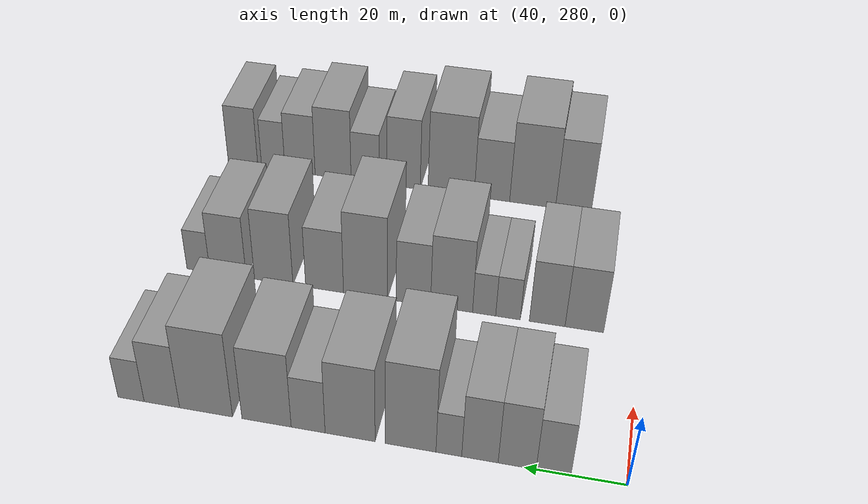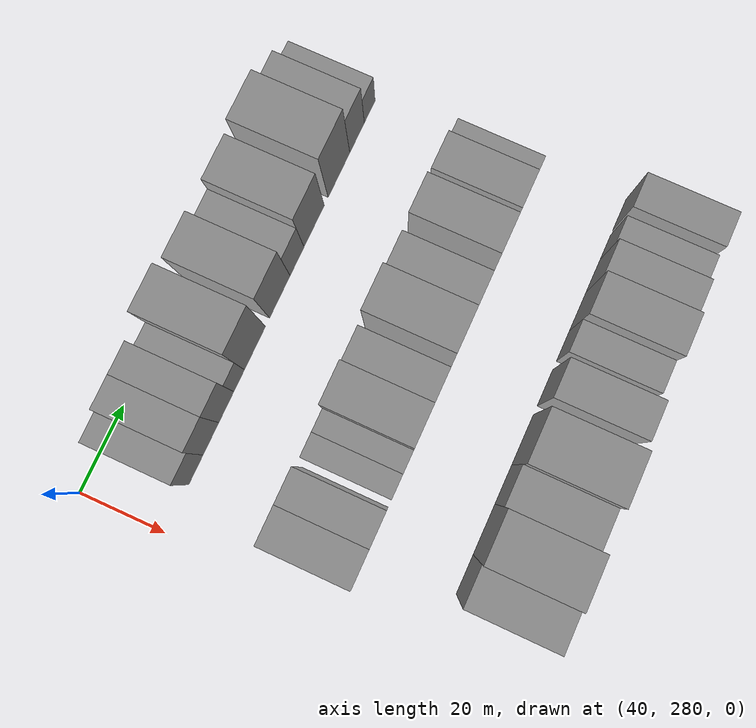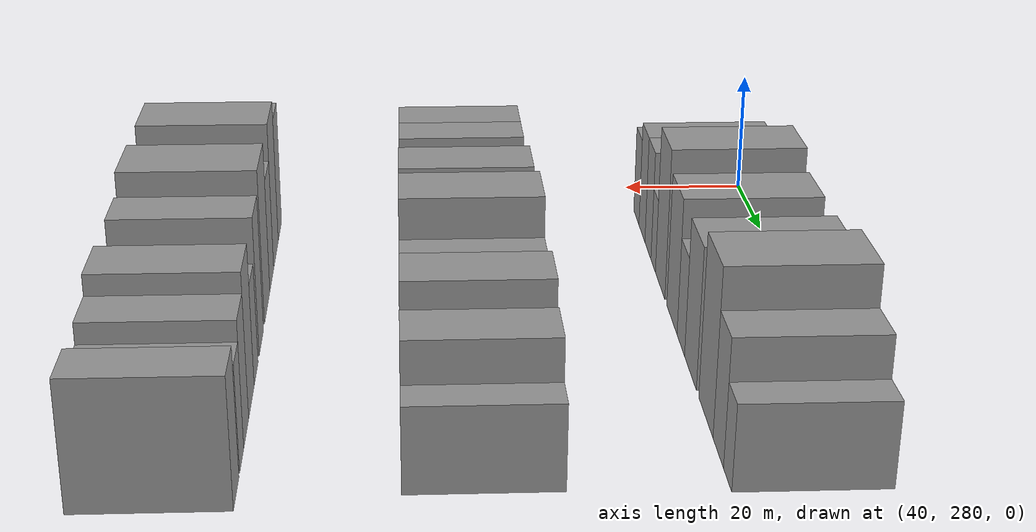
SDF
<sdf version="1.6">
 <world name="default">
  <model name="building_75">
   <static>1</static>
   <pose>50.0000 294.2836 0 0.000000 0.000000 0.000000</pose>
   <link name="link">
    <pose>0 0 7.50 0 0 0</pose>
    <collision name="collision"><geometry><box><size>20.0000 6.7849 15.0000</size></box></geometry></collision>
    <visual name="visual">
     <cast_shadows>0</cast_shadows>
     <geometry><box><size>20.0000 6.7849 15.0000</size></box></geometry>
     <material>
      <script>
       <uri>model://grey_wall/materials/scripts</uri>
       <uri>model://grey_wall/materials/textures</uri>
       <name>vrc/grey_wall</name>
      </script>
     </material>
    </visual>
   </link>
  </model>
  <model name="building_76">
   <static>1</static>
   <pose>50.0000 301.4086 0 0.000000 0.000000 0.000000</pose>
   <link name="link">
    <pose>0 0 9.00 0 0 0</pose>
    <collision name="collision"><geometry><box><size>20.0000 7.4652 18.0000</size></box></geometry></collision>
    <visual name="visual">
     <cast_shadows>0</cast_shadows>
     <geometry><box><size>20.0000 7.4652 18.0000</size></box></geometry>
     <material>
      <script>
       <uri>model://grey_wall/materials/scripts</uri>
       <uri>model://grey_wall/materials/textures</uri>
       <name>vrc/grey_wall</name>
      </script>
     </material>
    </visual>
   </link>
  </model>
  <model name="building_77">
   <static>1</static>
   <pose>50.0000 308.7556 0 0.000000 0.000000 0.000000</pose>
   <link name="link">
    <pose>0 0 9.00 0 0 0</pose>
    <collision name="collision"><geometry><box><size>20.0000 7.2288 18.0000</size></box></geometry></collision>
    <visual name="visual">
     <cast_shadows>0</cast_shadows>
     <geometry><box><size>20.0000 7.2288 18.0000</size></box></geometry>
     <material>
      <script>
       <uri>model://grey_wall/materials/scripts</uri>
       <uri>model://grey_wall/materials/textures</uri>
       <name>vrc/grey_wall</name>
      </script>
     </material>
    </visual>
   </link>
  </model>
  <model name="building_78">
   <static>1</static>
   <pose>50.0000 314.9421 0 0.000000 0.000000 0.000000</pose>
   <link name="link">
    <pose>0 0 6.00 0 0 0</pose>
    <collision name="collision"><geometry><box><size>20.0000 5.1442 12.0000</size></box></geometry></collision>
    <visual name="visual">
     <cast_shadows>0</cast_shadows>
     <geometry><box><size>20.0000 5.1442 12.0000</size></box></geometry>
     <material>
      <script>
       <uri>model://grey_wall/materials/scripts</uri>
       <uri>model://grey_wall/materials/textures</uri>
       <name>vrc/grey_wall</name>
      </script>
     </material>
    </visual>
   </link>
  </model>
  <model name="building_79">
   <static>1</static>
   <pose>50.0000 322.6762 0 0.000000 0.000000 0.000000</pose>
   <link name="link">
    <pose>0 0 12.00 0 0 0</pose>
    <collision name="collision"><geometry><box><size>20.0000 10.3239 24.0000</size></box></geometry></collision>
    <visual name="visual">
     <cast_shadows>0</cast_shadows>
     <geometry><box><size>20.0000 10.3239 24.0000</size></box></geometry>
     <material>
      <script>
       <uri>model://grey_wall/materials/scripts</uri>
       <uri>model://grey_wall/materials/textures</uri>
       <name>vrc/grey_wall</name>
      </script>
     </material>
    </visual>
   </link>
  </model>
  <model name="building_80">
   <static>1</static>
   <pose>50.0000 334.9730 0 0.000000 0.000000 0.000000</pose>
   <link name="link">
    <pose>0 0 10.50 0 0 0</pose>
    <collision name="collision"><geometry><box><size>20.0000 10.2697 21.0000</size></box></geometry></collision>
    <visual name="visual">
     <cast_shadows>0</cast_shadows>
     <geometry><box><size>20.0000 10.2697 21.0000</size></box></geometry>
     <material>
      <script>
       <uri>model://grey_wall/materials/scripts</uri>
       <uri>model://grey_wall/materials/textures</uri>
       <name>vrc/grey_wall</name>
      </script>
     </material>
    </visual>
   </link>
  </model>
  <model name="building_81">
   <static>1</static>
   <pose>50.0000 343.6365 0 0.000000 0.000000 0.000000</pose>
   <link name="link">
    <pose>0 0 7.50 0 0 0</pose>
    <collision name="collision"><geometry><box><size>20.0000 7.0573 15.0000</size></box></geometry></collision>
    <visual name="visual">
     <cast_shadows>0</cast_shadows>
     <geometry><box><size>20.0000 7.0573 15.0000</size></box></geometry>
     <material>
      <script>
       <uri>model://grey_wall/materials/scripts</uri>
       <uri>model://grey_wall/materials/textures</uri>
       <name>vrc/grey_wall</name>
      </script>
     </material>
    </visual>
   </link>
  </model>
  <model name="building_82">
   <static>1</static>
   <pose>50.0000 352.3466 0 0.000000 0.000000 0.000000</pose>
   <link name="link">
    <pose>0 0 10.50 0 0 0</pose>
    <collision name="collision"><geometry><box><size>20.0000 10.3629 21.0000</size></box></geometry></collision>
    <visual name="visual">
     <cast_shadows>0</cast_shadows>
     <geometry><box><size>20.0000 10.3629 21.0000</size></box></geometry>
     <material>
      <script>
       <uri>model://grey_wall/materials/scripts</uri>
       <uri>model://grey_wall/materials/textures</uri>
       <name>vrc/grey_wall</name>
      </script>
     </material>
    </visual>
   </link>
  </model>
  <model name="building_83">
   <static>1</static>
   <pose>50.0000 365.1858 0 0.000000 0.000000 0.000000</pose>
   <link name="link">
    <pose>0 0 12.00 0 0 0</pose>
    <collision name="collision"><geometry><box><size>20.0000 11.3154 24.0000</size></box></geometry></collision>
    <visual name="visual">
     <cast_shadows>0</cast_shadows>
     <geometry><box><size>20.0000 11.3154 24.0000</size></box></geometry>
     <material>
      <script>
       <uri>model://grey_wall/materials/scripts</uri>
       <uri>model://grey_wall/materials/textures</uri>
       <name>vrc/grey_wall</name>
      </script>
     </material>
    </visual>
   </link>
  </model>
  <model name="building_84">
   <static>1</static>
   <pose>50.0000 374.6880 0 0.000000 0.000000 0.000000</pose>
   <link name="link">
    <pose>0 0 9.00 0 0 0</pose>
    <collision name="collision"><geometry><box><size>20.0000 7.6889 18.0000</size></box></geometry></collision>
    <visual name="visual">
     <cast_shadows>0</cast_shadows>
     <geometry><box><size>20.0000 7.6889 18.0000</size></box></geometry>
     <material>
      <script>
       <uri>model://grey_wall/materials/scripts</uri>
       <uri>model://grey_wall/materials/textures</uri>
       <name>vrc/grey_wall</name>
      </script>
     </material>
    </visual>
   </link>
  </model>
  <model name="building_85">
   <static>1</static>
   <pose>50.0000 381.3923 0 0.000000 0.000000 0.000000</pose>
   <link name="link">
    <pose>0 0 6.00 0 0 0</pose>
    <collision name="collision"><geometry><box><size>20.0000 5.7198 12.0000</size></box></geometry></collision>
    <visual name="visual">
     <cast_shadows>0</cast_shadows>
     <geometry><box><size>20.0000 5.7198 12.0000</size></box></geometry>
     <material>
      <script>
       <uri>model://grey_wall/materials/scripts</uri>
       <uri>model://grey_wall/materials/textures</uri>
       <name>vrc/grey_wall</name>
      </script>
     </material>
    </visual>
   </link>
  </model>
  <model name="building_155">
   <static>1</static>
   <pose>90.0000 291.9110 0 0.000000 0.000000 0.000000</pose>
   <link name="link">
    <pose>0 0 9.00 0 0 0</pose>
    <collision name="collision"><geometry><box><size>20.0000 8.4079 18.0000</size></box></geometry></collision>
    <visual name="visual">
     <cast_shadows>0</cast_shadows>
     <geometry><box><size>20.0000 8.4079 18.0000</size></box></geometry>
     <material>
      <script>
       <uri>model://grey_wall/materials/scripts</uri>
       <uri>model://grey_wall/materials/textures</uri>
       <name>vrc/grey_wall</name>
      </script>
     </material>
    </visual>
   </link>
  </model>
  <model name="building_156">
   <static>1</static>
   <pose>90.0000 300.0490 0 0.000000 0.000000 0.000000</pose>
   <link name="link">
    <pose>0 0 9.00 0 0 0</pose>
    <collision name="collision"><geometry><box><size>20.0000 7.8681 18.0000</size></box></geometry></collision>
    <visual name="visual">
     <cast_shadows>0</cast_shadows>
     <geometry><box><size>20.0000 7.8681 18.0000</size></box></geometry>
     <material>
      <script>
       <uri>model://grey_wall/materials/scripts</uri>
       <uri>model://grey_wall/materials/textures</uri>
       <name>vrc/grey_wall</name>
      </script>
     </material>
    </visual>
   </link>
  </model>
  <model name="building_157">
   <static>1</static>
   <pose>90.0000 308.7134 0 0.000000 0.000000 0.000000</pose>
   <link name="link">
    <pose>0 0 6.00 0 0 0</pose>
    <collision name="collision"><geometry><box><size>20.0000 5.4607 12.0000</size></box></geometry></collision>
    <visual name="visual">
     <cast_shadows>0</cast_shadows>
     <geometry><box><size>20.0000 5.4607 12.0000</size></box></geometry>
     <material>
      <script>
       <uri>model://grey_wall/materials/scripts</uri>
       <uri>model://grey_wall/materials/textures</uri>
       <name>vrc/grey_wall</name>
      </script>
     </material>
    </visual>
   </link>
  </model>
  <model name="building_158">
   <static>1</static>
   <pose>90.0000 314.0347 0 0.000000 0.000000 0.000000</pose>
   <link name="link">
    <pose>0 0 6.00 0 0 0</pose>
    <collision name="collision"><geometry><box><size>20.0000 5.1819 12.0000</size></box></geometry></collision>
    <visual name="visual">
     <cast_shadows>0</cast_shadows>
     <geometry><box><size>20.0000 5.1819 12.0000</size></box></geometry>
     <material>
      <script>
       <uri>model://grey_wall/materials/scripts</uri>
       <uri>model://grey_wall/materials/textures</uri>
       <name>vrc/grey_wall</name>
      </script>
     </material>
    </visual>
   </link>
  </model>
  <model name="building_159">
   <static>1</static>
   <pose>90.0000 321.3732 0 0.000000 0.000000 0.000000</pose>
   <link name="link">
    <pose>0 0 10.50 0 0 0</pose>
    <collision name="collision"><geometry><box><size>20.0000 9.4953 21.0000</size></box></geometry></collision>
    <visual name="visual">
     <cast_shadows>0</cast_shadows>
     <geometry><box><size>20.0000 9.4953 21.0000</size></box></geometry>
     <material>
      <script>
       <uri>model://grey_wall/materials/scripts</uri>
       <uri>model://grey_wall/materials/textures</uri>
       <name>vrc/grey_wall</name>
      </script>
     </material>
    </visual>
   </link>
  </model>
  <model name="building_160">
   <static>1</static>
   <pose>90.0000 330.0523 0 0.000000 0.000000 0.000000</pose>
   <link name="link">
    <pose>0 0 9.00 0 0 0</pose>
    <collision name="collision"><geometry><box><size>20.0000 7.8629 18.0000</size></box></geometry></collision>
    <visual name="visual">
     <cast_shadows>0</cast_shadows>
     <geometry><box><size>20.0000 7.8629 18.0000</size></box></geometry>
     <material>
      <script>
       <uri>model://grey_wall/materials/scripts</uri>
       <uri>model://grey_wall/materials/textures</uri>
       <name>vrc/grey_wall</name>
      </script>
     </material>
    </visual>
   </link>
  </model>
  <model name="building_161">
   <static>1</static>
   <pose>90.0000 341.0586 0 0.000000 0.000000 0.000000</pose>
   <link name="link">
    <pose>0 0 12.00 0 0 0</pose>
    <collision name="collision"><geometry><box><size>20.0000 10.1496 24.0000</size></box></geometry></collision>
    <visual name="visual">
     <cast_shadows>0</cast_shadows>
     <geometry><box><size>20.0000 10.1496 24.0000</size></box></geometry>
     <material>
      <script>
       <uri>model://grey_wall/materials/scripts</uri>
       <uri>model://grey_wall/materials/textures</uri>
       <name>vrc/grey_wall</name>
      </script>
     </material>
    </visual>
   </link>
  </model>
  <model name="building_162">
   <static>1</static>
   <pose>90.0000 350.5519 0 0.000000 0.000000 0.000000</pose>
   <link name="link">
    <pose>0 0 9.00 0 0 0</pose>
    <collision name="collision"><geometry><box><size>20.0000 8.8370 18.0000</size></box></geometry></collision>
    <visual name="visual">
     <cast_shadows>0</cast_shadows>
     <geometry><box><size>20.0000 8.8370 18.0000</size></box></geometry>
     <material>
      <script>
       <uri>model://grey_wall/materials/scripts</uri>
       <uri>model://grey_wall/materials/textures</uri>
       <name>vrc/grey_wall</name>
      </script>
     </material>
    </visual>
   </link>
  </model>
  <model name="building_163">
   <static>1</static>
   <pose>90.0000 362.5187 0 0.000000 0.000000 0.000000</pose>
   <link name="link">
    <pose>0 0 10.50 0 0 0</pose>
    <collision name="collision"><geometry><box><size>20.0000 9.0964 21.0000</size></box></geometry></collision>
    <visual name="visual">
     <cast_shadows>0</cast_shadows>
     <geometry><box><size>20.0000 9.0964 21.0000</size></box></geometry>
     <material>
      <script>
       <uri>model://grey_wall/materials/scripts</uri>
       <uri>model://grey_wall/materials/textures</uri>
       <name>vrc/grey_wall</name>
      </script>
     </material>
    </visual>
   </link>
  </model>
  <model name="building_164">
   <static>1</static>
   <pose>90.0000 373.4309 0 0.000000 0.000000 0.000000</pose>
   <link name="link">
    <pose>0 0 9.00 0 0 0</pose>
    <collision name="collision"><geometry><box><size>20.0000 8.7281 18.0000</size></box></geometry></collision>
    <visual name="visual">
     <cast_shadows>0</cast_shadows>
     <geometry><box><size>20.0000 8.7281 18.0000</size></box></geometry>
     <material>
      <script>
       <uri>model://grey_wall/materials/scripts</uri>
       <uri>model://grey_wall/materials/textures</uri>
       <name>vrc/grey_wall</name>
      </script>
     </material>
    </visual>
   </link>
  </model>
  <model name="building_165">
   <static>1</static>
   <pose>90.0000 380.5736 0 0.000000 0.000000 0.000000</pose>
   <link name="link">
    <pose>0 0 6.00 0 0 0</pose>
    <collision name="collision"><geometry><box><size>20.0000 5.5572 12.0000</size></box></geometry></collision>
    <visual name="visual">
     <cast_shadows>0</cast_shadows>
     <geometry><box><size>20.0000 5.5572 12.0000</size></box></geometry>
     <material>
      <script>
       <uri>model://grey_wall/materials/scripts</uri>
       <uri>model://grey_wall/materials/textures</uri>
       <name>vrc/grey_wall</name>
      </script>
     </material>
    </visual>
   </link>
  </model>
  <model name="building_244">
   <static>1</static>
   <pose>130.0000 298.1577 0 0.000000 0.000000 0.000000</pose>
   <link name="link">
    <pose>0 0 10.50 0 0 0</pose>
    <collision name="collision"><geometry><box><size>20.0000 8.6908 21.0000</size></box></geometry></collision>
    <visual name="visual">
     <cast_shadows>0</cast_shadows>
     <geometry><box><size>20.0000 8.6908 21.0000</size></box></geometry>
     <material>
      <script>
       <uri>model://grey_wall/materials/scripts</uri>
       <uri>model://grey_wall/materials/textures</uri>
       <name>vrc/grey_wall</name>
      </script>
     </material>
    </visual>
   </link>
  </model>
  <model name="building_245">
   <static>1</static>
   <pose>130.0000 308.1584 0 0.000000 0.000000 0.000000</pose>
   <link name="link">
    <pose>0 0 12.00 0 0 0</pose>
    <collision name="collision"><geometry><box><size>20.0000 11.3106 24.0000</size></box></geometry></collision>
    <visual name="visual">
     <cast_shadows>0</cast_shadows>
     <geometry><box><size>20.0000 11.3106 24.0000</size></box></geometry>
     <material>
      <script>
       <uri>model://grey_wall/materials/scripts</uri>
       <uri>model://grey_wall/materials/textures</uri>
       <name>vrc/grey_wall</name>
      </script>
     </material>
    </visual>
   </link>
  </model>
  <model name="building_246">
   <static>1</static>
   <pose>130.0000 318.2241 0 0.000000 0.000000 0.000000</pose>
   <link name="link">
    <pose>0 0 9.00 0 0 0</pose>
    <collision name="collision"><geometry><box><size>20.0000 8.8208 18.0000</size></box></geometry></collision>
    <visual name="visual">
     <cast_shadows>0</cast_shadows>
     <geometry><box><size>20.0000 8.8208 18.0000</size></box></geometry>
     <material>
      <script>
       <uri>model://grey_wall/materials/scripts</uri>
       <uri>model://grey_wall/materials/textures</uri>
       <name>vrc/grey_wall</name>
      </script>
     </material>
    </visual>
   </link>
  </model>
  <model name="building_247">
   <static>1</static>
   <pose>130.0000 328.4529 0 0.000000 0.000000 0.000000</pose>
   <link name="link">
    <pose>0 0 12.00 0 0 0</pose>
    <collision name="collision"><geometry><box><size>20.0000 11.6368 24.0000</size></box></geometry></collision>
    <visual name="visual">
     <cast_shadows>0</cast_shadows>
     <geometry><box><size>20.0000 11.6368 24.0000</size></box></geometry>
     <material>
      <script>
       <uri>model://grey_wall/materials/scripts</uri>
       <uri>model://grey_wall/materials/textures</uri>
       <name>vrc/grey_wall</name>
      </script>
     </material>
    </visual>
   </link>
  </model>
  <model name="building_248">
   <static>1</static>
   <pose>130.0000 340.5234 0 0.000000 0.000000 0.000000</pose>
   <link name="link">
    <pose>0 0 10.50 0 0 0</pose>
    <collision name="collision"><geometry><box><size>20.0000 8.5042 21.0000</size></box></geometry></collision>
    <visual name="visual">
     <cast_shadows>0</cast_shadows>
     <geometry><box><size>20.0000 8.5042 21.0000</size></box></geometry>
     <material>
      <script>
       <uri>model://grey_wall/materials/scripts</uri>
       <uri>model://grey_wall/materials/textures</uri>
       <name>vrc/grey_wall</name>
      </script>
     </material>
    </visual>
   </link>
  </model>
  <model name="building_249">
   <static>1</static>
   <pose>130.0000 350.3819 0 0.000000 0.000000 0.000000</pose>
   <link name="link">
    <pose>0 0 7.50 0 0 0</pose>
    <collision name="collision"><geometry><box><size>20.0000 7.2128 15.0000</size></box></geometry></collision>
    <visual name="visual">
     <cast_shadows>0</cast_shadows>
     <geometry><box><size>20.0000 7.2128 15.0000</size></box></geometry>
     <material>
      <script>
       <uri>model://grey_wall/materials/scripts</uri>
       <uri>model://grey_wall/materials/textures</uri>
       <name>vrc/grey_wall</name>
      </script>
     </material>
    </visual>
   </link>
  </model>
  <model name="building_250">
   <static>1</static>
   <pose>130.0000 358.6565 0 0.000000 0.000000 0.000000</pose>
   <link name="link">
    <pose>0 0 10.50 0 0 0</pose>
    <collision name="collision"><geometry><box><size>20.0000 9.3363 21.0000</size></box></geometry></collision>
    <visual name="visual">
     <cast_shadows>0</cast_shadows>
     <geometry><box><size>20.0000 9.3363 21.0000</size></box></geometry>
     <material>
      <script>
       <uri>model://grey_wall/materials/scripts</uri>
       <uri>model://grey_wall/materials/textures</uri>
       <name>vrc/grey_wall</name>
      </script>
     </material>
    </visual>
   </link>
  </model>
  <model name="building_251">
   <static>1</static>
   <pose>130.0000 367.2721 0 0.000000 0.000000 0.000000</pose>
   <link name="link">
    <pose>0 0 9.00 0 0 0</pose>
    <collision name="collision"><geometry><box><size>20.0000 7.8948 18.0000</size></box></geometry></collision>
    <visual name="visual">
     <cast_shadows>0</cast_shadows>
     <geometry><box><size>20.0000 7.8948 18.0000</size></box></geometry>
     <material>
      <script>
       <uri>model://grey_wall/materials/scripts</uri>
       <uri>model://grey_wall/materials/textures</uri>
       <name>vrc/grey_wall</name>
      </script>
     </material>
    </visual>
   </link>
  </model>
  <model name="building_252">
   <static>1</static>
   <pose>130.0000 374.3086 0 0.000000 0.000000 0.000000</pose>
   <link name="link">
    <pose>0 0 7.50 0 0 0</pose>
    <collision name="collision"><geometry><box><size>20.0000 6.1782 15.0000</size></box></geometry></collision>
    <visual name="visual">
     <cast_shadows>0</cast_shadows>
     <geometry><box><size>20.0000 6.1782 15.0000</size></box></geometry>
     <material>
      <script>
       <uri>model://grey_wall/materials/scripts</uri>
       <uri>model://grey_wall/materials/textures</uri>
       <name>vrc/grey_wall</name>
      </script>
     </material>
    </visual>
   </link>
  </model>
  <model name="building_253">
   <static>1</static>
   <pose>130.0000 382.3399 0 0.000000 0.000000 0.000000</pose>
   <link name="link">
    <pose>0 0 9.00 0 0 0</pose>
    <collision name="collision"><geometry><box><size>20.0000 7.8845 18.0000</size></box></geometry></collision>
    <visual name="visual">
     <cast_shadows>0</cast_shadows>
     <geometry><box><size>20.0000 7.8845 18.0000</size></box></geometry>
     <material>
      <script>
       <uri>model://grey_wall/materials/scripts</uri>
       <uri>model://grey_wall/materials/textures</uri>
       <name>vrc/grey_wall</name>
      </script>
     </material>
    </visual>
   </link>
  </model>
 </world>
</sdf>
